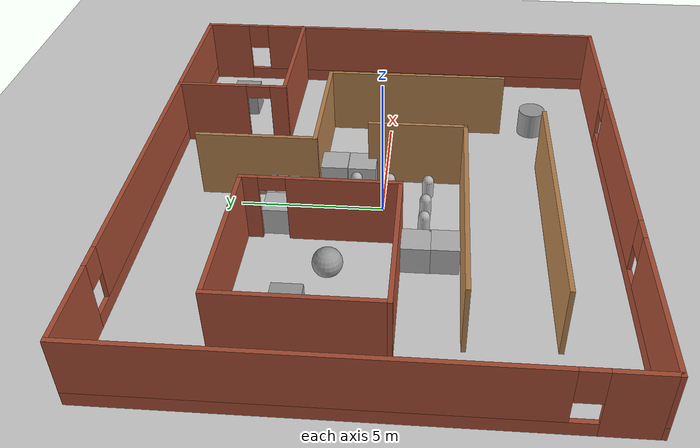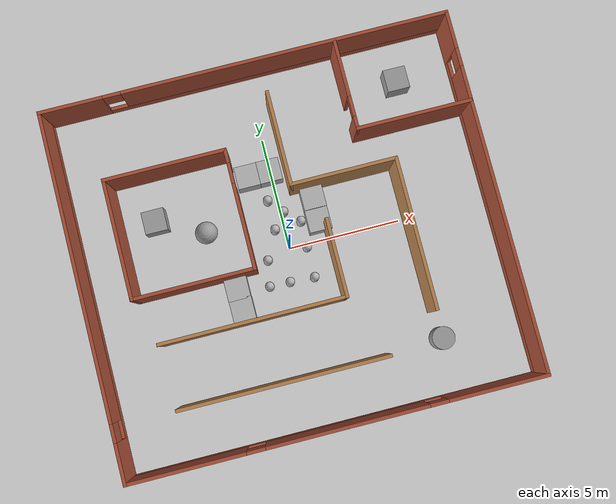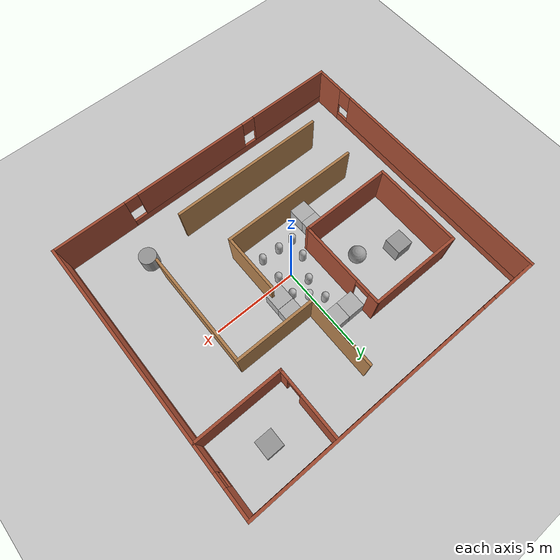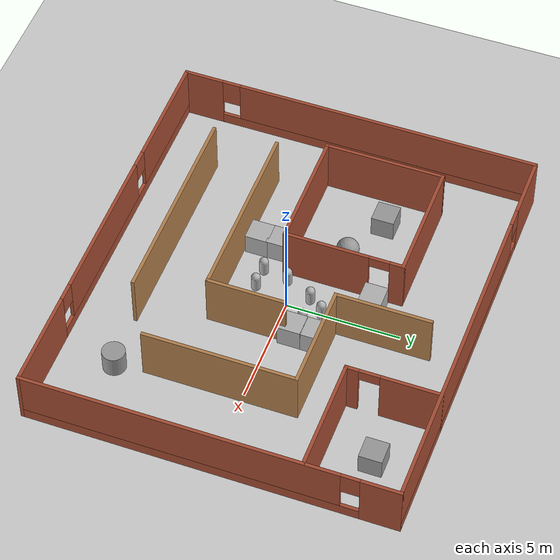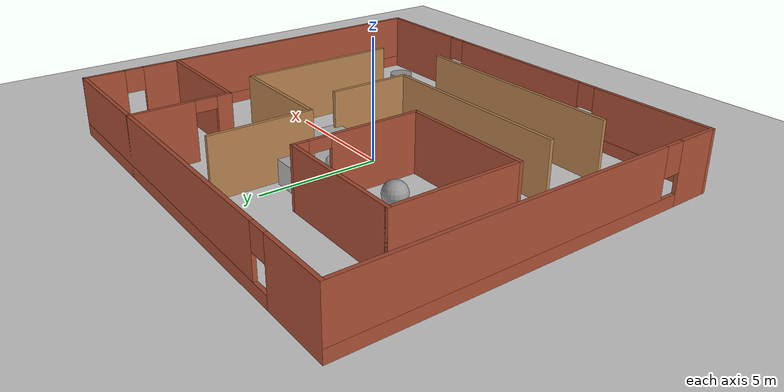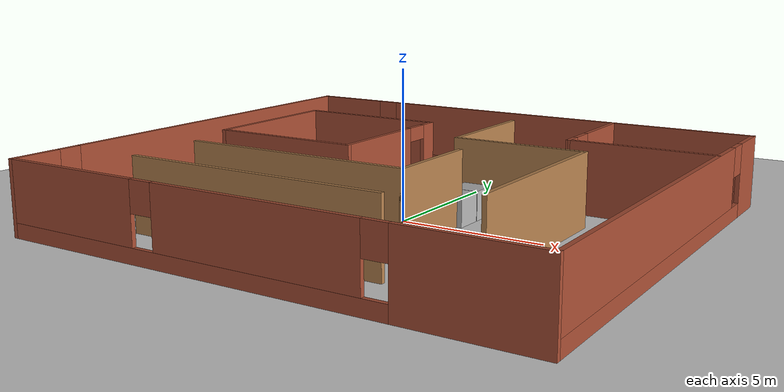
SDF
<sdf version="1.10">
 <world name="default">
  <physics name="1ms" type="ode">
   <max_step_size>0.005</max_step_size>
   <real_time_factor>250.0</real_time_factor>
  </physics>
  <plugin filename="libignition-gazebo-physics-system.so" name="ignition::gazebo::systems::Physics"/>
  <plugin filename="libignition-gazebo-user-commands-system.so" name="ignition::gazebo::systems::UserCommands"/>
  <plugin filename="libignition-gazebo-scene-broadcaster-system.so" name="ignition::gazebo::systems::SceneBroadcaster"/>
  <plugin filename="libignition-gazebo-sensors-system.so" name="ignition::gazebo::systems::Sensors">
   <render_engine>ogre2</render_engine>
  </plugin>
  <plugin filename="libignition-gazebo-contact-system.so" name="ignition::gazebo::systems::Contact"/>
  <gravity>0 0 -9.8000000000000007</gravity>
  <magnetic_field>6.0000000000000002e-06 2.3e-05 -4.1999999999999998e-05</magnetic_field>
  <atmosphere type="adiabatic"/>
  <physics type="ode">
   <max_step_size>0.001</max_step_size>
   <real_time_factor>1</real_time_factor>
   <real_time_update_rate>1000</real_time_update_rate>
  </physics>
  <scene>
   <ambient>0.400000006 0.400000006 0.400000006 1</ambient>
   <background>0.699999988 0.699999988 0.699999988 1</background>
   <shadows>true</shadows>
  </scene>
  <audio><device>default</device></audio>
  <spherical_coordinates>
   <surface_model>EARTH_WGS84</surface_model>
   <latitude_deg>0</latitude_deg>
   <longitude_deg>0</longitude_deg>
   <elevation>0</elevation>
   <heading_deg>0</heading_deg>
  </spherical_coordinates>
  <model name="ground_plane">
   <static>true</static>
   <link name="link">
    <collision name="collision">
     <geometry><plane><normal>0 0 1</normal><size>100 100</size></plane></geometry>
     <surface><friction><ode><mu>100</mu><mu2>50</mu2></ode></friction></surface>
    </collision>
    <visual name="visual">
     <cast_shadows>false</cast_shadows>
     <geometry><plane><normal>0 0 1</normal><size>100 100</size></plane></geometry>
     <material>
      <script><uri>file://media/materials/scripts/gazebo.material</uri><name>Gazebo/Grey</name></script>
     </material>
    </visual>
    <inertial>
     <mass>1</mass>
     <inertia><ixx>1</ixx><ixy>0</ixy><ixz>0</ixz><iyy>1</iyy><iyz>0</iyz><izz>1</izz></inertia>
    </inertial>
   </link>
  </model>
  <model name="maze">
   <link name="Wall_10">
    <pose>-1.7 1.8999999999999999 0 0 0 -1.5708</pose>
    <visual name="Wall_10_Visual_0">
     <pose>-2.3468900000000001 0 1.25 0 0 0</pose>
     <geometry><box><size>0.65622100000000005 0.14999999999999999 2.5</size></box></geometry>
     <material>
      <script><uri>file://media/materials/scripts/gazebo.material</uri><name>Gazebo/Bricks</name></script>
      <ambient>1 1 1 1</ambient>
     </material>
     <meta><layer>0</layer></meta>
    </visual>
    <collision name="Wall_10_Collision_0">
     <geometry><box><size>0.65622100000000005 0.14999999999999999 2.5</size></box></geometry>
     <pose>-2.3468900000000001 0 1.25 0 0 0</pose>
    </collision>
    <visual name="Wall_10_Visual_1">
     <pose>0.77810999999999997 0 1.25 0 0 0</pose>
     <geometry><box><size>3.7937799999999999 0.14999999999999999 2.5</size></box></geometry>
     <material>
      <script><uri>file://media/materials/scripts/gazebo.material</uri><name>Gazebo/Bricks</name></script>
      <ambient>1 1 1 1</ambient>
     </material>
     <meta><layer>0</layer></meta>
    </visual>
    <collision name="Wall_10_Collision_1">
     <geometry><box><size>3.7937799999999999 0.14999999999999999 2.5</size></box></geometry>
     <pose>0.77810999999999997 0 1.25 0 0 0</pose>
    </collision>
    <visual name="Wall_10_Visual_2">
     <pose>-1.5687800000000001 0 2.25 0 0 0</pose>
     <geometry><box><size>0.90000000000000002 0.14999999999999999 0.5</size></box></geometry>
     <material>
      <script><uri>file://media/materials/scripts/gazebo.material</uri><name>Gazebo/Bricks</name></script>
      <ambient>1 1 1 1</ambient>
     </material>
     <meta><layer>0</layer></meta>
    </visual>
    <collision name="Wall_10_Collision_2">
     <geometry><box><size>0.90000000000000002 0.14999999999999999 0.5</size></box></geometry>
     <pose>-1.5687800000000001 0 2.25 0 0 0</pose>
    </collision>
    <inertial>
     <mass>1</mass>
     <inertia><ixx>1</ixx><ixy>0</ixy><ixz>0</ixz><iyy>1</iyy><iyz>0</iyz><izz>1</izz></inertia>
    </inertial>
   </link>
   <link name="Wall_11">
    <collision name="Wall_11_Collision">
     <geometry><box><size>5.4500000000000002 0.14999999999999999 2.5</size></box></geometry>
     <pose>0 0 1.25 0 0 0</pose>
    </collision>
    <visual name="Wall_11_Visual">
     <pose>0 0 1.25 0 0 0</pose>
     <geometry><box><size>5.4500000000000002 0.14999999999999999 2.5</size></box></geometry>
     <material>
      <script><uri>file://media/materials/scripts/gazebo.material</uri><name>Gazebo/Bricks</name></script>
      <ambient>1 1 1 1</ambient>
     </material>
     <meta><layer>0</layer></meta>
    </visual>
    <pose>-4.349999999999997 -0.70000000000000073 0 0 0 3.1415900000000008</pose>
    <inertial>
     <mass>1</mass>
     <inertia><ixx>1</ixx><ixy>0</ixy><ixz>0</ixz><iyy>1</iyy><iyz>0</iyz><izz>1</izz></inertia>
    </inertial>
   </link>
   <link name="Wall_12">
    <collision name="Wall_12_Collision">
     <geometry><box><size>5.3499999999999996 0.14999999999999999 2.5</size></box></geometry>
     <pose>0 0 1.25 0 0 0</pose>
    </collision>
    <visual name="Wall_12_Visual">
     <pose>0 0 1.25 0 0 0</pose>
     <geometry><box><size>5.3499999999999996 0.14999999999999999 2.5</size></box></geometry>
     <material>
      <script><uri>file://media/materials/scripts/gazebo.material</uri><name>Gazebo/Bricks</name></script>
      <ambient>1 1 1 1</ambient>
     </material>
     <meta><layer>0</layer></meta>
    </visual>
    <pose>-6.9999999999999991 1.8999999999999968 0 0 0 1.5708000000000011</pose>
    <inertial>
     <mass>1</mass>
     <inertia><ixx>1</ixx><ixy>0</ixy><ixz>0</ixz><iyy>1</iyy><iyz>0</iyz><izz>1</izz></inertia>
    </inertial>
   </link>
   <link name="Wall_14">
    <collision name="Wall_14_Collision">
     <geometry><box><size>8.25 0.14999999999999999 2.5</size></box></geometry>
     <pose>0 0 1.25 0 0 0</pose>
    </collision>
    <visual name="Wall_14_Visual">
     <pose>0 0 1.25 0 0 0</pose>
     <geometry><box><size>8.25 0.14999999999999999 2.5</size></box></geometry>
     <material>
      <script><uri>file://media/materials/scripts/gazebo.material</uri><name>Gazebo/Wood</name></script>
      <ambient>1 1 1 1</ambient>
     </material>
     <meta><layer>0</layer></meta>
    </visual>
    <pose>-2.2997599999999965 -2.7918099999999986 0 0 0 7.7715611723760958e-16</pose>
    <inertial>
     <mass>1</mass>
     <inertia><ixx>1</ixx><ixy>0</ixy><ixz>0</ixz><iyy>1</iyy><iyz>0</iyz><izz>1</izz></inertia>
    </inertial>
   </link>
   <link name="Wall_15">
    <collision name="Wall_15_Collision">
     <geometry><box><size>3.5 0.14999999999999999 2.5</size></box></geometry>
     <pose>0 0 1.25 0 0 0</pose>
    </collision>
    <visual name="Wall_15_Visual">
     <pose>0 0 1.25 0 0 0</pose>
     <geometry><box><size>3.5 0.14999999999999999 2.5</size></box></geometry>
     <material>
      <script><uri>file://media/materials/scripts/gazebo.material</uri><name>Gazebo/Wood</name></script>
      <ambient>1 1 1 1</ambient>
     </material>
     <meta><layer>0</layer></meta>
    </visual>
    <pose>1.7502400000000022 -1.1168099999999961 0 0 0 1.5708000000000011</pose>
    <inertial>
     <mass>1</mass>
     <inertia><ixx>1</ixx><ixy>0</ixy><ixz>0</ixz><iyy>1</iyy><iyz>0</iyz><izz>1</izz></inertia>
    </inertial>
   </link>
   <link name="Wall_21">
    <pose>3.9999999999999964 6.0000000000000053 0 0 0 -1.5707999999999998</pose>
    <visual name="Wall_21_Visual_0">
     <pose>-0.76249999999999996 0 1.25 0 0 0</pose>
     <geometry><box><size>2.625 0.14999999999999999 2.5</size></box></geometry>
     <material>
      <script><uri>file://media/materials/scripts/gazebo.material</uri><name>Gazebo/Bricks</name></script>
      <ambient>1 1 1 1</ambient>
     </material>
     <meta><layer>0</layer></meta>
    </visual>
    <collision name="Wall_21_Collision_0">
     <geometry><box><size>2.625 0.14999999999999999 2.5</size></box></geometry>
     <pose>-0.76249999999999996 0 1.25 0 0 0</pose>
    </collision>
    <visual name="Wall_21_Visual_1">
     <pose>1.7625 0 1.25 0 0 0</pose>
     <geometry><box><size>0.625 0.14999999999999999 2.5</size></box></geometry>
     <material>
      <script><uri>file://media/materials/scripts/gazebo.material</uri><name>Gazebo/Bricks</name></script>
      <ambient>1 1 1 1</ambient>
     </material>
     <meta><layer>0</layer></meta>
    </visual>
    <collision name="Wall_21_Collision_1">
     <geometry><box><size>0.625 0.14999999999999999 2.5</size></box></geometry>
     <pose>1.7625 0 1.25 0 0 0</pose>
    </collision>
    <visual name="Wall_21_Visual_2">
     <pose>1 0 2.25 0 0 0</pose>
     <geometry><box><size>0.90000000000000002 0.14999999999999999 0.5</size></box></geometry>
     <material>
      <script><uri>file://media/materials/scripts/gazebo.material</uri><name>Gazebo/Bricks</name></script>
      <ambient>1 1 1 1</ambient>
     </material>
     <meta><layer>0</layer></meta>
    </visual>
    <collision name="Wall_21_Collision_2">
     <geometry><box><size>0.90000000000000002 0.14999999999999999 0.5</size></box></geometry>
     <pose>1 0 2.25 0 0 0</pose>
    </collision>
    <inertial>
     <mass>1</mass>
     <inertia><ixx>1</ixx><ixy>0</ixy><ixz>0</ixz><iyy>1</iyy><iyz>0</iyz><izz>1</izz></inertia>
    </inertial>
   </link>
   <link name="Wall_22">
    <collision name="Wall_22_Collision">
     <geometry><box><size>5.1500000000000004 0.14999999999999999 2.5</size></box></geometry>
     <pose>0 0 1.25 0 0 0</pose>
    </collision>
    <visual name="Wall_22_Visual">
     <pose>0 0 1.25 0 0 0</pose>
     <geometry><box><size>5.1500000000000004 0.14999999999999999 2.5</size></box></geometry>
     <material>
      <script><uri>file://media/materials/scripts/gazebo.material</uri><name>Gazebo/Bricks</name></script>
      <ambient>1 1 1 1</ambient>
     </material>
     <meta><layer>0</layer></meta>
    </visual>
    <pose>6.4999999999999973 4.0000000000000071 0 0 0 7.7715611723760958e-16</pose>
    <inertial>
     <mass>1</mass>
     <inertia><ixx>1</ixx><ixy>0</ixy><ixz>0</ixz><iyy>1</iyy><iyz>0</iyz><izz>1</izz></inertia>
    </inertial>
   </link>
   <link name="Wall_27">
    <collision name="Wall_27_Collision">
     <geometry><box><size>4.25 0.14999999999999999 2.5</size></box></geometry>
     <pose>0 0 1.25 0 0 0</pose>
    </collision>
    <visual name="Wall_27_Visual">
     <pose>0 0 1.25 0 0 0</pose>
     <geometry><box><size>4.25 0.14999999999999999 2.5</size></box></geometry>
     <material>
      <script><uri>file://media/materials/scripts/gazebo.material</uri><name>Gazebo/Wood</name></script>
      <ambient>1 1 1 1</ambient>
     </material>
     <meta><layer>0</layer></meta>
    </visual>
    <pose>0.64905699999999811 4.4225200000000005 0 0 0 -1.5707999999999998</pose>
    <inertial>
     <mass>1</mass>
     <inertia><ixx>1</ixx><ixy>0</ixy><ixz>0</ixz><iyy>1</iyy><iyz>0</iyz><izz>1</izz></inertia>
    </inertial>
   </link>
   <link name="Wall_28">
    <collision name="Wall_28_Collision">
     <geometry><box><size>4.75 0.14999999999999999 2.5</size></box></geometry>
     <pose>0 0 1.25 0 0 0</pose>
    </collision>
    <visual name="Wall_28_Visual">
     <pose>0 0 1.25 0 0 0</pose>
     <geometry><box><size>4.75 0.14999999999999999 2.5</size></box></geometry>
     <material>
      <script><uri>file://media/materials/scripts/gazebo.material</uri><name>Gazebo/Wood</name></script>
      <ambient>1 1 1 1</ambient>
     </material>
     <meta><layer>0</layer></meta>
    </visual>
    <pose>2.9490599999999989 2.3725200000000051 0 0 0 7.7715611723760958e-16</pose>
    <inertial>
     <mass>1</mass>
     <inertia><ixx>1</ixx><ixy>0</ixy><ixz>0</ixz><iyy>1</iyy><iyz>0</iyz><izz>1</izz></inertia>
    </inertial>
   </link>
   <link name="Wall_29">
    <collision name="Wall_29_Collision">
     <geometry><box><size>6.75 0.14999999999999999 2.5</size></box></geometry>
     <pose>0 0 1.25 0 0 0</pose>
    </collision>
    <visual name="Wall_29_Visual">
     <pose>0 0 1.25 0 0 0</pose>
     <geometry><box><size>6.75 0.14999999999999999 2.5</size></box></geometry>
     <material>
      <script><uri>file://media/materials/scripts/gazebo.material</uri><name>Gazebo/Wood</name></script>
      <ambient>1 1 1 1</ambient>
     </material>
     <meta><layer>0</layer></meta>
    </visual>
    <pose>5.2490600000000009 -0.92748199999999348 0 0 0 -1.5707999999999998</pose>
    <inertial>
     <mass>1</mass>
     <inertia><ixx>1</ixx><ixy>0</ixy><ixz>0</ixz><iyy>1</iyy><iyz>0</iyz><izz>1</izz></inertia>
    </inertial>
   </link>
   <link name="Wall_31">
    <collision name="Wall_31_Collision">
     <geometry><box><size>9.25 0.14999999999999999 2.5</size></box></geometry>
     <pose>0 0 1.25 0 0 0</pose>
    </collision>
    <visual name="Wall_31_Visual">
     <pose>0 0 1.25 0 0 0</pose>
     <geometry><box><size>9.25 0.14999999999999999 2.5</size></box></geometry>
     <material>
      <script><uri>file://media/materials/scripts/gazebo.material</uri><name>Gazebo/Wood</name></script>
      <ambient>1 1 1 1</ambient>
     </material>
     <meta><layer>0</layer></meta>
    </visual>
    <pose>-1.6783899999999938 -5.6236999999999995 0 0 0 7.7715611723760958e-16</pose>
    <inertial>
     <mass>1</mass>
     <inertia><ixx>1</ixx><ixy>0</ixy><ixz>0</ixz><iyy>1</iyy><iyz>0</iyz><izz>1</izz></inertia>
    </inertial>
   </link>
   <link name="Wall_4">
    <pose>-4.662936703425659e-15 8.0000000000000018 0 0 0 7.7715611723760958e-16</pose>
    <visual name="Wall_4_Visual_0">
     <pose>-7.6494200000000001 0 1.25 0 0 0</pose>
     <geometry><box><size>2.8511600000000001 0.14999999999999999 2.5</size></box></geometry>
     <material>
      <script><uri>file://media/materials/scripts/gazebo.material</uri><name>Gazebo/Bricks</name></script>
      <ambient>1 1 1 1</ambient>
     </material>
     <meta><layer>0</layer></meta>
    </visual>
    <collision name="Wall_4_Collision_0">
     <geometry><box><size>2.8511600000000001 0.14999999999999999 2.5</size></box></geometry>
     <pose>-7.6494200000000001 0 1.25 0 0 0</pose>
    </collision>
    <visual name="Wall_4_Visual_1">
     <pose>1.4255800000000001 0 0.25 0 0 0</pose>
     <geometry><box><size>15.2988 0.14999999999999999 0.5</size></box></geometry>
     <material>
      <script><uri>file://media/materials/scripts/gazebo.material</uri><name>Gazebo/Bricks</name></script>
      <ambient>1 1 1 1</ambient>
     </material>
     <meta><layer>0</layer></meta>
    </visual>
    <collision name="Wall_4_Collision_1">
     <geometry><box><size>15.2988 0.14999999999999999 0.5</size></box></geometry>
     <pose>1.4255800000000001 0 0.25 0 0 0</pose>
    </collision>
    <visual name="Wall_4_Visual_2">
     <pose>1.82558 0 1.5 0 0 0</pose>
     <geometry><box><size>14.498799999999999 0.14999999999999999 2</size></box></geometry>
     <material>
      <script><uri>file://media/materials/scripts/gazebo.material</uri><name>Gazebo/Bricks</name></script>
      <ambient>1 1 1 1</ambient>
     </material>
     <meta><layer>0</layer></meta>
    </visual>
    <collision name="Wall_4_Collision_2">
     <geometry><box><size>14.498799999999999 0.14999999999999999 2</size></box></geometry>
     <pose>1.82558 0 1.5 0 0 0</pose>
    </collision>
    <visual name="Wall_4_Visual_3">
     <pose>-5.8238300000000001 0 2 0 0 0</pose>
     <geometry><box><size>0.80000000000000004 0.14999999999999999 1</size></box></geometry>
     <material>
      <script><uri>file://media/materials/scripts/gazebo.material</uri><name>Gazebo/Bricks</name></script>
      <ambient>1 1 1 1</ambient>
     </material>
     <meta><layer>0</layer></meta>
    </visual>
    <collision name="Wall_4_Collision_3">
     <geometry><box><size>0.80000000000000004 0.14999999999999999 1</size></box></geometry>
     <pose>-5.8238300000000001 0 2 0 0 0</pose>
    </collision>
    <inertial>
     <mass>1</mass>
     <inertia><ixx>1</ixx><ixy>0</ixy><ixz>0</ixz><iyy>1</iyy><iyz>0</iyz><izz>1</izz></inertia>
    </inertial>
   </link>
   <link name="Wall_5">
    <pose>9 9.4368957093138306e-15 0 0 0 -1.5707999999999998</pose>
    <visual name="Wall_5_Visual_0">
     <pose>-7.2107999999999999 0 1.25 0 0 0</pose>
     <geometry><box><size>1.7283999999999999 0.14999999999999999 2.5</size></box></geometry>
     <material>
      <script><uri>file://media/materials/scripts/gazebo.material</uri><name>Gazebo/Bricks</name></script>
      <ambient>1 1 1 1</ambient>
     </material>
     <meta><layer>0</layer></meta>
    </visual>
    <collision name="Wall_5_Collision_0">
     <geometry><box><size>1.7283999999999999 0.14999999999999999 2.5</size></box></geometry>
     <pose>-7.2107999999999999 0 1.25 0 0 0</pose>
    </collision>
    <visual name="Wall_5_Visual_1">
     <pose>0.86420200000000003 0 0.25 0 0 0</pose>
     <geometry><box><size>14.4216 0.14999999999999999 0.5</size></box></geometry>
     <material>
      <script><uri>file://media/materials/scripts/gazebo.material</uri><name>Gazebo/Bricks</name></script>
      <ambient>1 1 1 1</ambient>
     </material>
     <meta><layer>0</layer></meta>
    </visual>
    <collision name="Wall_5_Collision_1">
     <geometry><box><size>14.4216 0.14999999999999999 0.5</size></box></geometry>
     <pose>0.86420200000000003 0 0.25 0 0 0</pose>
    </collision>
    <visual name="Wall_5_Visual_2">
     <pose>1.2642 0 1.5 0 0 0</pose>
     <geometry><box><size>13.621600000000001 0.14999999999999999 2</size></box></geometry>
     <material>
      <script><uri>file://media/materials/scripts/gazebo.material</uri><name>Gazebo/Bricks</name></script>
      <ambient>1 1 1 1</ambient>
     </material>
     <meta><layer>0</layer></meta>
    </visual>
    <collision name="Wall_5_Collision_2">
     <geometry><box><size>13.621600000000001 0.14999999999999999 2</size></box></geometry>
     <pose>1.2642 0 1.5 0 0 0</pose>
    </collision>
    <visual name="Wall_5_Visual_3">
     <pose>-5.9466000000000001 0 2 0 0 0</pose>
     <geometry><box><size>0.80000000000000004 0.14999999999999999 1</size></box></geometry>
     <material>
      <script><uri>file://media/materials/scripts/gazebo.material</uri><name>Gazebo/Bricks</name></script>
      <ambient>1 1 1 1</ambient>
     </material>
     <meta><layer>0</layer></meta>
    </visual>
    <collision name="Wall_5_Collision_3">
     <geometry><box><size>0.80000000000000004 0.14999999999999999 1</size></box></geometry>
     <pose>-5.9466000000000001 0 2 0 0 0</pose>
    </collision>
    <inertial>
     <mass>1</mass>
     <inertia><ixx>1</ixx><ixy>0</ixy><ixz>0</ixz><iyy>1</iyy><iyz>0</iyz><izz>1</izz></inertia>
    </inertial>
   </link>
   <link name="Wall_6">
    <pose>7.7715611723760926e-15 -7.9999999999999964 0 0 0 3.1415900000000008</pose>
    <visual name="Wall_6_Visual_0">
     <pose>-6.9027599999999998 0 1.25 0 0 0</pose>
     <geometry><box><size>4.3444900000000004 0.14999999999999999 2.5</size></box></geometry>
     <material>
      <script><uri>file://media/materials/scripts/gazebo.material</uri><name>Gazebo/Bricks</name></script>
      <ambient>1 1 1 1</ambient>
     </material>
     <meta><layer>0</layer></meta>
    </visual>
    <collision name="Wall_6_Collision_0">
     <geometry><box><size>4.3444900000000004 0.14999999999999999 2.5</size></box></geometry>
     <pose>-6.9027599999999998 0 1.25 0 0 0</pose>
    </collision>
    <visual name="Wall_6_Visual_1">
     <pose>2.1722399999999999 0 0.25 0 0 0</pose>
     <geometry><box><size>13.8055 0.14999999999999999 0.5</size></box></geometry>
     <material>
      <script><uri>file://media/materials/scripts/gazebo.material</uri><name>Gazebo/Bricks</name></script>
      <ambient>1 1 1 1</ambient>
     </material>
     <meta><layer>0</layer></meta>
    </visual>
    <collision name="Wall_6_Collision_1">
     <geometry><box><size>13.8055 0.14999999999999999 0.5</size></box></geometry>
     <pose>2.1722399999999999 0 0.25 0 0 0</pose>
    </collision>
    <visual name="Wall_6_Visual_2">
     <pose>-0.42655100000000001 0 1.5 0 0 0</pose>
     <geometry><box><size>7.00793 0.14999999999999999 2</size></box></geometry>
     <material>
      <script><uri>file://media/materials/scripts/gazebo.material</uri><name>Gazebo/Bricks</name></script>
      <ambient>1 1 1 1</ambient>
     </material>
     <meta><layer>0</layer></meta>
    </visual>
    <collision name="Wall_6_Collision_2">
     <geometry><box><size>7.00793 0.14999999999999999 2</size></box></geometry>
     <pose>-0.42655100000000001 0 1.5 0 0 0</pose>
    </collision>
    <visual name="Wall_6_Visual_3">
     <pose>6.47621 0 1.5 0 0 0</pose>
     <geometry><box><size>5.1975899999999999 0.14999999999999999 2</size></box></geometry>
     <material>
      <script><uri>file://media/materials/scripts/gazebo.material</uri><name>Gazebo/Bricks</name></script>
      <ambient>1 1 1 1</ambient>
     </material>
     <meta><layer>0</layer></meta>
    </visual>
    <collision name="Wall_6_Collision_3">
     <geometry><box><size>5.1975899999999999 0.14999999999999999 2</size></box></geometry>
     <pose>6.47621 0 1.5 0 0 0</pose>
    </collision>
    <visual name="Wall_6_Visual_4">
     <pose>-4.3305100000000003 0 2 0 0 0</pose>
     <geometry><box><size>0.80000000000000004 0.14999999999999999 1</size></box></geometry>
     <material>
      <script><uri>file://media/materials/scripts/gazebo.material</uri><name>Gazebo/Bricks</name></script>
      <ambient>1 1 1 1</ambient>
     </material>
     <meta><layer>0</layer></meta>
    </visual>
    <collision name="Wall_6_Collision_4">
     <geometry><box><size>0.80000000000000004 0.14999999999999999 1</size></box></geometry>
     <pose>-4.3305100000000003 0 2 0 0 0</pose>
    </collision>
    <visual name="Wall_6_Visual_5">
     <pose>3.4774099999999999 0 2 0 0 0</pose>
     <geometry><box><size>0.80000000000000004 0.14999999999999999 1</size></box></geometry>
     <material>
      <script><uri>file://media/materials/scripts/gazebo.material</uri><name>Gazebo/Bricks</name></script>
      <ambient>1 1 1 1</ambient>
     </material>
     <meta><layer>0</layer></meta>
    </visual>
    <collision name="Wall_6_Collision_5">
     <geometry><box><size>0.80000000000000004 0.14999999999999999 1</size></box></geometry>
     <pose>3.4774099999999999 0 2 0 0 0</pose>
    </collision>
    <inertial>
     <mass>1</mass>
     <inertia><ixx>1</ixx><ixy>0</ixy><ixz>0</ixz><iyy>1</iyy><iyz>0</iyz><izz>1</izz></inertia>
    </inertial>
   </link>
   <link name="Wall_7">
    <pose>-8.9999999999999964 -4.5519144009631387e-15 0 0 0 1.5708000000000011</pose>
    <visual name="Wall_7_Visual_0">
     <pose>-7.1707200000000002 0 1.25 0 0 0</pose>
     <geometry><box><size>1.80857 0.14999999999999999 2.5</size></box></geometry>
     <material>
      <script><uri>file://media/materials/scripts/gazebo.material</uri><name>Gazebo/Bricks</name></script>
      <ambient>1 1 1 1</ambient>
     </material>
     <meta><layer>0</layer></meta>
    </visual>
    <collision name="Wall_7_Collision_0">
     <geometry><box><size>1.80857 0.14999999999999999 2.5</size></box></geometry>
     <pose>-7.1707200000000002 0 1.25 0 0 0</pose>
    </collision>
    <visual name="Wall_7_Visual_1">
     <pose>0.90428299999999995 0 0.25 0 0 0</pose>
     <geometry><box><size>14.3414 0.14999999999999999 0.5</size></box></geometry>
     <material>
      <script><uri>file://media/materials/scripts/gazebo.material</uri><name>Gazebo/Bricks</name></script>
      <ambient>1 1 1 1</ambient>
     </material>
     <meta><layer>0</layer></meta>
    </visual>
    <collision name="Wall_7_Collision_1">
     <geometry><box><size>14.3414 0.14999999999999999 0.5</size></box></geometry>
     <pose>0.90428299999999995 0 0.25 0 0 0</pose>
    </collision>
    <visual name="Wall_7_Visual_2">
     <pose>1.3042800000000001 0 1.5 0 0 0</pose>
     <geometry><box><size>13.541399999999999 0.14999999999999999 2</size></box></geometry>
     <material>
      <script><uri>file://media/materials/scripts/gazebo.material</uri><name>Gazebo/Bricks</name></script>
      <ambient>1 1 1 1</ambient>
     </material>
     <meta><layer>0</layer></meta>
    </visual>
    <collision name="Wall_7_Collision_2">
     <geometry><box><size>13.541399999999999 0.14999999999999999 2</size></box></geometry>
     <pose>1.3042800000000001 0 1.5 0 0 0</pose>
    </collision>
    <visual name="Wall_7_Visual_3">
     <pose>-5.8664300000000003 0 1.8999999999999999 0 0 0</pose>
     <geometry><box><size>0.80000000000000004 0.14999999999999999 1.2</size></box></geometry>
     <material>
      <script><uri>file://media/materials/scripts/gazebo.material</uri><name>Gazebo/Bricks</name></script>
      <ambient>1 1 1 1</ambient>
     </material>
     <meta><layer>0</layer></meta>
    </visual>
    <collision name="Wall_7_Collision_3">
     <geometry><box><size>0.80000000000000004 0.14999999999999999 1.2</size></box></geometry>
     <pose>-5.8664300000000003 0 1.8999999999999999 0 0 0</pose>
    </collision>
    <inertial>
     <mass>1</mass>
     <inertia><ixx>1</ixx><ixy>0</ixy><ixz>0</ixz><iyy>1</iyy><iyz>0</iyz><izz>1</izz></inertia>
    </inertial>
   </link>
   <link name="Wall_9">
    <collision name="Wall_9_Collision">
     <geometry><box><size>5.4500000000000002 0.14999999999999999 2.5</size></box></geometry>
     <pose>0 0 1.25 0 0 0</pose>
    </collision>
    <visual name="Wall_9_Visual">
     <pose>0 0 1.25 0 0 0</pose>
     <geometry><box><size>5.4500000000000002 0.14999999999999999 2.5</size></box></geometry>
     <material>
      <script><uri>file://media/materials/scripts/gazebo.material</uri><name>Gazebo/Bricks</name></script>
      <ambient>1 1 1 1</ambient>
     </material>
     <meta><layer>0</layer></meta>
    </visual>
    <pose>-4.3500000000000005 4.4999999999999982 0 0 0 7.7715611723760958e-16</pose>
    <inertial>
     <mass>1</mass>
     <inertia><ixx>1</ixx><ixy>0</ixy><ixz>0</ixz><iyy>1</iyy><iyz>0</iyz><izz>1</izz></inertia>
    </inertial>
   </link>
   <static>true</static>
  </model>
  <model name="maze_0">
   <link name="link_0">
    <inertial>
     <mass>1</mass>
     <inertia>
      <ixx>0.16666700000000001</ixx>
      <ixy>0</ixy>
      <ixz>0</ixz>
      <iyy>0.16666700000000001</iyy>
      <iyz>0</iyz>
      <izz>0.16666700000000001</izz>
     </inertia>
    </inertial>
    <pose>5.6783299999999999 4.9084899999999996 0 0 0 0</pose>
    <visual name="visual">
     <geometry><box><size>1 1 1</size></box></geometry>
     <material>
      <lighting>true</lighting>
      <script><uri>file://media/materials/scripts/gazebo.material</uri><name>Gazebo/Grey</name></script>
      <shader type="pixel"/>
     </material>
    </visual>
    <collision name="collision">
     <geometry><box><size>1 1 1</size></box></geometry>
     <surface>
      <friction>
       <ode><mu>1</mu><mu2>1</mu2><fdir1>0 0 0</fdir1><slip1>0</slip1><slip2>0</slip2></ode>
       <torsional>
        <coefficient>1</coefficient>
        <patch_radius>0</patch_radius>
        <surface_radius>0</surface_radius>
        <use_patch_radius>true</use_patch_radius>
        <ode><slip>0</slip></ode>
       </torsional>
      </friction>
      <bounce><restitution_coefficient>0</restitution_coefficient><threshold>1000000</threshold></bounce>
      <contact>
       <collide_without_contact>false</collide_without_contact>
       <collide_without_contact_bitmask>1</collide_without_contact_bitmask>
       <collide_bitmask>1</collide_bitmask>
       <ode>
        <soft_cfm>0</soft_cfm>
        <soft_erp>0.20000000000000001</soft_erp>
        <kp>10000000000000</kp>
        <kd>1</kd>
        <max_vel>0.01</max_vel>
        <min_depth>0</min_depth>
       </ode>
       <bullet>
        <split_impulse>true</split_impulse>
        <split_impulse_penetration_threshold>-0.01</split_impulse_penetration_threshold>
        <soft_cfm>0</soft_cfm>
        <soft_erp>0.20000000000000001</soft_erp>
        <kp>10000000000000</kp>
        <kd>1</kd>
       </bullet>
      </contact>
     </surface>
    </collision>
   </link>
   <link name="link_1">
    <inertial>
     <mass>1</mass>
     <inertia>
      <ixx>0.16666700000000001</ixx>
      <ixy>0</ixy>
      <ixz>0</ixz>
      <iyy>0.16666700000000001</iyy>
      <iyz>0</iyz>
      <izz>0.16666700000000001</izz>
     </inertia>
    </inertial>
    <pose>-6.2150299999999996 1.3735299999999997 0 0 0 0</pose>
    <visual name="visual">
     <geometry><box><size>1 1 1</size></box></geometry>
     <material>
      <lighting>true</lighting>
      <script><uri>file://media/materials/scripts/gazebo.material</uri><name>Gazebo/Grey</name></script>
      <shader type="pixel"/>
     </material>
    </visual>
    <collision name="collision">
     <geometry><box><size>1 1 1</size></box></geometry>
     <surface>
      <friction>
       <ode><mu>1</mu><mu2>1</mu2><fdir1>0 0 0</fdir1><slip1>0</slip1><slip2>0</slip2></ode>
       <torsional>
        <coefficient>1</coefficient>
        <patch_radius>0</patch_radius>
        <surface_radius>0</surface_radius>
        <use_patch_radius>true</use_patch_radius>
        <ode><slip>0</slip></ode>
       </torsional>
      </friction>
      <bounce><restitution_coefficient>0</restitution_coefficient><threshold>1000000</threshold></bounce>
      <contact>
       <collide_without_contact>false</collide_without_contact>
       <collide_without_contact_bitmask>1</collide_without_contact_bitmask>
       <collide_bitmask>1</collide_bitmask>
       <ode>
        <soft_cfm>0</soft_cfm>
        <soft_erp>0.20000000000000001</soft_erp>
        <kp>10000000000000</kp>
        <kd>1</kd>
        <max_vel>0.01</max_vel>
        <min_depth>0</min_depth>
       </ode>
       <bullet>
        <split_impulse>true</split_impulse>
        <split_impulse_penetration_threshold>-0.01</split_impulse_penetration_threshold>
        <soft_cfm>0</soft_cfm>
        <soft_erp>0.20000000000000001</soft_erp>
        <kp>10000000000000</kp>
        <kd>1</kd>
       </bullet>
      </contact>
     </surface>
    </collision>
   </link>
   <link name="link_2">
    <inertial>
     <mass>1</mass>
     <inertia>
      <ixx>0.10000000000000001</ixx>
      <ixy>0</ixy>
      <ixz>0</ixz>
      <iyy>0.10000000000000001</iyy>
      <iyz>0</iyz>
      <izz>0.10000000000000001</izz>
     </inertia>
    </inertial>
    <pose>-4.1561300000000001 0.37373999999999996 0 0 0 0</pose>
    <visual name="visual">
     <geometry><sphere><radius>0.5</radius></sphere></geometry>
     <material>
      <lighting>true</lighting>
      <script><uri>file://media/materials/scripts/gazebo.material</uri><name>Gazebo/Grey</name></script>
      <shader type="pixel"/>
     </material>
    </visual>
    <collision name="collision">
     <geometry><sphere><radius>0.5</radius></sphere></geometry>
     <surface>
      <friction>
       <ode><mu>1</mu><mu2>1</mu2><fdir1>0 0 0</fdir1><slip1>0</slip1><slip2>0</slip2></ode>
       <torsional>
        <coefficient>1</coefficient>
        <patch_radius>0</patch_radius>
        <surface_radius>0</surface_radius>
        <use_patch_radius>true</use_patch_radius>
        <ode><slip>0</slip></ode>
       </torsional>
      </friction>
      <bounce><restitution_coefficient>0</restitution_coefficient><threshold>1000000</threshold></bounce>
      <contact>
       <collide_without_contact>false</collide_without_contact>
       <collide_without_contact_bitmask>1</collide_without_contact_bitmask>
       <collide_bitmask>1</collide_bitmask>
       <ode>
        <soft_cfm>0</soft_cfm>
        <soft_erp>0.20000000000000001</soft_erp>
        <kp>10000000000000</kp>
        <kd>1</kd>
        <max_vel>0.01</max_vel>
        <min_depth>0</min_depth>
       </ode>
       <bullet>
        <split_impulse>true</split_impulse>
        <split_impulse_penetration_threshold>-0.01</split_impulse_penetration_threshold>
        <soft_cfm>0</soft_cfm>
        <soft_erp>0.20000000000000001</soft_erp>
        <kp>10000000000000</kp>
        <kd>1</kd>
       </bullet>
      </contact>
     </surface>
    </collision>
   </link>
   <link name="link_3">
    <inertial>
     <mass>1</mass>
     <inertia>
      <ixx>0.14583299999999999</ixx>
      <ixy>0</ixy>
      <ixz>0</ixz>
      <iyy>0.14583299999999999</iyy>
      <iyz>0</iyz>
      <izz>0.125</izz>
     </inertia>
    </inertial>
    <pose>4.6928200000000002 -6.6557700000000004 0 0 0 0</pose>
    <visual name="visual">
     <geometry><cylinder><radius>0.5</radius><length>1</length></cylinder></geometry>
     <material>
      <lighting>true</lighting>
      <script><uri>file://media/materials/scripts/gazebo.material</uri><name>Gazebo/Grey</name></script>
      <shader type="pixel"/>
     </material>
    </visual>
    <collision name="collision">
     <geometry><cylinder><radius>0.5</radius><length>1</length></cylinder></geometry>
     <surface>
      <friction>
       <ode><mu>1</mu><mu2>1</mu2><fdir1>0 0 0</fdir1><slip1>0</slip1><slip2>0</slip2></ode>
       <torsional>
        <coefficient>1</coefficient>
        <patch_radius>0</patch_radius>
        <surface_radius>0</surface_radius>
        <use_patch_radius>true</use_patch_radius>
        <ode><slip>0</slip></ode>
       </torsional>
      </friction>
      <bounce><restitution_coefficient>0</restitution_coefficient><threshold>1000000</threshold></bounce>
      <contact>
       <collide_without_contact>false</collide_without_contact>
       <collide_without_contact_bitmask>1</collide_without_contact_bitmask>
       <collide_bitmask>1</collide_bitmask>
       <ode>
        <soft_cfm>0</soft_cfm>
        <soft_erp>0.20000000000000001</soft_erp>
        <kp>10000000000000</kp>
        <kd>1</kd>
        <max_vel>0.01</max_vel>
        <min_depth>0</min_depth>
       </ode>
       <bullet>
        <split_impulse>true</split_impulse>
        <split_impulse_penetration_threshold>-0.01</split_impulse_penetration_threshold>
        <soft_cfm>0</soft_cfm>
        <soft_erp>0.20000000000000001</soft_erp>
        <kp>10000000000000</kp>
        <kd>1</kd>
       </bullet>
      </contact>
     </surface>
    </collision>
   </link>
   <static>false</static>
   <pose>0.74066699999999996 1.14741 0.5 0 0 0</pose>
  </model>
  <model name="box">
   <pose>1.5033242346989062 1.8305424433192319 0.5 0 0 0</pose>
   <link name="box_link">
    <inertial>
     <inertia><ixx>0.16666</ixx><ixy>0</ixy><ixz>0</ixz><iyy>0.16666</iyy><iyz>0</iyz><izz>0.16666</izz></inertia>
     <mass>1</mass>
    </inertial>
    <collision name="box_collision"><geometry><box><size>1 1 1</size></box></geometry></collision>
    <visual name="box_visual">
     <geometry><box><size>1 1 1</size></box></geometry>
     <material>
      <ambient>0.300000012 0.300000012 0.300000012 1</ambient>
      <diffuse>0.699999988 0.699999988 0.699999988 1</diffuse>
      <specular>1 1 1 1</specular>
     </material>
    </visual>
   </link>
   <static>false</static>
  </model>
  <model name="box_0">
   <pose>-0.063324336422673877 3.4510493372498061 0.5 0 0 0</pose>
   <link name="box_link">
    <inertial>
     <inertia><ixx>0.16666</ixx><ixy>0</ixy><ixz>0</ixz><iyy>0.16666</iyy><iyz>0</iyz><izz>0.16666</izz></inertia>
     <mass>1</mass>
    </inertial>
    <collision name="box_collision"><geometry><box><size>1 1 1</size></box></geometry></collision>
    <visual name="box_visual">
     <geometry><box><size>1 1 1</size></box></geometry>
     <material>
      <ambient>0.300000012 0.300000012 0.300000012 1</ambient>
      <diffuse>0.699999988 0.699999988 0.699999988 1</diffuse>
      <specular>1 1 1 1</specular>
     </material>
    </visual>
   </link>
   <static>false</static>
  </model>
  <model name="box_1">
   <pose>-1.0635475442382234 3.448202211366548 0.5 0 0 0</pose>
   <link name="box_link">
    <inertial>
     <inertia><ixx>0.16666</ixx><ixy>0</ixy><ixz>0</ixz><iyy>0.16666</iyy><iyz>0</iyz><izz>0.16666</izz></inertia>
     <mass>1</mass>
    </inertial>
    <collision name="box_collision"><geometry><box><size>1 1 1</size></box></geometry></collision>
    <visual name="box_visual">
     <geometry><box><size>1 1 1</size></box></geometry>
     <material>
      <ambient>0.300000012 0.300000012 0.300000012 1</ambient>
      <diffuse>0.699999988 0.699999988 0.699999988 1</diffuse>
      <specular>1 1 1 1</specular>
     </material>
    </visual>
   </link>
   <static>false</static>
  </model>
  <model name="box_2">
   <pose>1.4945773397780515 0.81781051366565749 0.5 0 0 0</pose>
   <link name="box_link">
    <inertial>
     <inertia><ixx>0.16666</ixx><ixy>0</ixy><ixz>0</ixz><iyy>0.16666</iyy><iyz>0</iyz><izz>0.16666</izz></inertia>
     <mass>1</mass>
    </inertial>
    <collision name="box_collision"><geometry><box><size>1 1 1</size></box></geometry></collision>
    <visual name="box_visual">
     <geometry><box><size>1 1 1</size></box></geometry>
     <material>
      <ambient>0.300000012 0.300000012 0.300000012 1</ambient>
      <diffuse>0.699999988 0.699999988 0.699999988 1</diffuse>
      <specular>1 1 1 1</specular>
     </material>
    </visual>
   </link>
   <static>false</static>
  </model>
  <model name="box_3">
   <pose>-2.6814313206039881 -1.2360105682095734 0.5 0 0 0</pose>
   <link name="box_link">
    <inertial>
     <inertia><ixx>0.16666</ixx><ixy>0</ixy><ixz>0</ixz><iyy>0.16666</iyy><iyz>0</iyz><izz>0.16666</izz></inertia>
     <mass>1</mass>
    </inertial>
    <collision name="box_collision"><geometry><box><size>1 1 1</size></box></geometry></collision>
    <visual name="box_visual">
     <geometry><box><size>1 1 1</size></box></geometry>
     <material>
      <ambient>0.300000012 0.300000012 0.300000012 1</ambient>
      <diffuse>0.699999988 0.699999988 0.699999988 1</diffuse>
      <specular>1 1 1 1</specular>
     </material>
    </visual>
   </link>
   <static>false</static>
  </model>
  <model name="box_4">
   <pose>-2.6710058615269259 -2.1724051205038353 0.5 0 0 0</pose>
   <link name="box_link">
    <inertial>
     <inertia><ixx>0.16666</ixx><ixy>0</ixy><ixz>0</ixz><iyy>0.16666</iyy><iyz>0</iyz><izz>0.16666</izz></inertia>
     <mass>1</mass>
    </inertial>
    <collision name="box_collision"><geometry><box><size>1 1 1</size></box></geometry></collision>
    <visual name="box_visual">
     <geometry><box><size>1 1 1</size></box></geometry>
     <material>
      <ambient>0.300000012 0.300000012 0.300000012 1</ambient>
      <diffuse>0.699999988 0.699999988 0.699999988 1</diffuse>
      <specular>1 1 1 1</specular>
     </material>
    </visual>
   </link>
   <static>false</static>
  </model>
  <model name="capsule">
   <pose>0.7362113458050672 -0.19357719438075427 0.5 0 0 0</pose>
   <link name="capsule_link">
    <inertial>
     <inertia>
      <ixx>0.074153999999999998</ixx>
      <ixy>0</ixy>
      <ixz>0</ixz>
      <iyy>0.074153999999999998</iyy>
      <iyz>0</iyz>
      <izz>0.018769000000000001</izz>
     </inertia>
     <mass>1</mass>
    </inertial>
    <collision name="capsule_collision">
     <geometry>
      <capsule><radius>0.20000000000000001</radius><length>0.59999999999999998</length></capsule>
     </geometry>
    </collision>
    <visual name="capsule_visual">
     <geometry>
      <capsule><radius>0.20000000000000001</radius><length>0.59999999999999998</length></capsule>
     </geometry>
     <material>
      <ambient>0.300000012 0.300000012 0.300000012 1</ambient>
      <diffuse>0.699999988 0.699999988 0.699999988 1</diffuse>
      <specular>1 1 1 1</specular>
     </material>
    </visual>
   </link>
   <static>true</static>
  </model>
  <model name="capsule_0">
   <pose>0.72017487514806566 -1.5574074120756829 0.5 0 0 0</pose>
   <link name="capsule_link">
    <inertial>
     <inertia>
      <ixx>0.074153999999999998</ixx>
      <ixy>0</ixy>
      <ixz>0</ixz>
      <iyy>0.074153999999999998</iyy>
      <iyz>0</iyz>
      <izz>0.018769000000000001</izz>
     </inertia>
     <mass>1</mass>
    </inertial>
    <collision name="capsule_collision">
     <geometry>
      <capsule><radius>0.20000000000000001</radius><length>0.59999999999999998</length></capsule>
     </geometry>
    </collision>
    <visual name="capsule_visual">
     <geometry>
      <capsule><radius>0.20000000000000001</radius><length>0.59999999999999998</length></capsule>
     </geometry>
     <material>
      <ambient>0.300000012 0.300000012 0.300000012 1</ambient>
      <diffuse>0.699999988 0.699999988 0.699999988 1</diffuse>
      <specular>1 1 1 1</specular>
     </material>
    </visual>
   </link>
   <static>true</static>
  </model>
  <model name="capsule_1">
   <pose>-0.36747905666479808 -1.5012330597277932 0.5 0 0 0</pose>
   <link name="capsule_link">
    <inertial>
     <inertia>
      <ixx>0.074153999999999998</ixx>
      <ixy>0</ixy>
      <ixz>0</ixz>
      <iyy>0.074153999999999998</iyy>
      <iyz>0</iyz>
      <izz>0.018769000000000001</izz>
     </inertia>
     <mass>1</mass>
    </inertial>
    <collision name="capsule_collision">
     <geometry>
      <capsule><radius>0.20000000000000001</radius><length>0.59999999999999998</length></capsule>
     </geometry>
    </collision>
    <visual name="capsule_visual">
     <geometry>
      <capsule><radius>0.20000000000000001</radius><length>0.59999999999999998</length></capsule>
     </geometry>
     <material>
      <ambient>0.300000012 0.300000012 0.300000012 1</ambient>
      <diffuse>0.699999988 0.699999988 0.699999988 1</diffuse>
      <specular>1 1 1 1</specular>
     </material>
    </visual>
   </link>
   <static>true</static>
  </model>
  <model name="capsule_2">
   <pose>-1.2849400140541012 -1.4790047869470506 0.5 0 0 0</pose>
   <link name="capsule_link">
    <inertial>
     <inertia>
      <ixx>0.074153999999999998</ixx>
      <ixy>0</ixy>
      <ixz>0</ixz>
      <iyy>0.074153999999999998</iyy>
      <iyz>0</iyz>
      <izz>0.018769000000000001</izz>
     </inertia>
     <mass>1</mass>
    </inertial>
    <collision name="capsule_collision">
     <geometry>
      <capsule><radius>0.20000000000000001</radius><length>0.59999999999999998</length></capsule>
     </geometry>
    </collision>
    <visual name="capsule_visual">
     <geometry>
      <capsule><radius>0.20000000000000001</radius><length>0.59999999999999998</length></capsule>
     </geometry>
     <material>
      <ambient>0.300000012 0.300000012 0.300000012 1</ambient>
      <diffuse>0.699999988 0.699999988 0.699999988 1</diffuse>
      <specular>1 1 1 1</specular>
     </material>
    </visual>
   </link>
   <static>true</static>
  </model>
  <model name="capsule_3">
   <pose>0.11043517176092488 1.5814479078769756 0.5 0 0 0</pose>
   <link name="capsule_link">
    <inertial>
     <inertia>
      <ixx>0.074153999999999998</ixx>
      <ixy>0</ixy>
      <ixz>0</ixz>
      <iyy>0.074153999999999998</iyy>
      <iyz>0</iyz>
      <izz>0.018769000000000001</izz>
     </inertia>
     <mass>1</mass>
    </inertial>
    <collision name="capsule_collision">
     <geometry>
      <capsule><radius>0.20000000000000001</radius><length>0.59999999999999998</length></capsule>
     </geometry>
    </collision>
    <visual name="capsule_visual">
     <geometry>
      <capsule><radius>0.20000000000000001</radius><length>0.59999999999999998</length></capsule>
     </geometry>
     <material>
      <ambient>0.300000012 0.300000012 0.300000012 1</ambient>
      <diffuse>0.699999988 0.699999988 0.699999988 1</diffuse>
      <specular>1 1 1 1</specular>
     </material>
    </visual>
   </link>
   <static>true</static>
  </model>
  <model name="capsule_4">
   <pose>-0.44993062419176333 0.89688319721536547 0.5 0 0 0</pose>
   <link name="capsule_link">
    <inertial>
     <inertia>
      <ixx>0.074153999999999998</ixx>
      <ixy>0</ixy>
      <ixz>0</ixz>
      <iyy>0.074153999999999998</iyy>
      <iyz>0</iyz>
      <izz>0.018769000000000001</izz>
     </inertia>
     <mass>1</mass>
    </inertial>
    <collision name="capsule_collision">
     <geometry>
      <capsule><radius>0.20000000000000001</radius><length>0.59999999999999998</length></capsule>
     </geometry>
    </collision>
    <visual name="capsule_visual">
     <geometry>
      <capsule><radius>0.20000000000000001</radius><length>0.59999999999999998</length></capsule>
     </geometry>
     <material>
      <ambient>0.300000012 0.300000012 0.300000012 1</ambient>
      <diffuse>0.699999988 0.699999988 0.699999988 1</diffuse>
      <specular>1 1 1 1</specular>
     </material>
    </visual>
   </link>
   <static>true</static>
  </model>
  <model name="capsule_5">
   <pose>-0.44676863085000562 2.2273270390978208 0.5 0 0 0</pose>
   <link name="capsule_link">
    <inertial>
     <inertia>
      <ixx>0.074153999999999998</ixx>
      <ixy>0</ixy>
      <ixz>0</ixz>
      <iyy>0.074153999999999998</iyy>
      <iyz>0</iyz>
      <izz>0.018769000000000001</izz>
     </inertia>
     <mass>1</mass>
    </inertial>
    <collision name="capsule_collision">
     <geometry>
      <capsule><radius>0.20000000000000001</radius><length>0.59999999999999998</length></capsule>
     </geometry>
    </collision>
    <visual name="capsule_visual">
     <geometry>
      <capsule><radius>0.20000000000000001</radius><length>0.59999999999999998</length></capsule>
     </geometry>
     <material>
      <ambient>0.300000012 0.300000012 0.300000012 1</ambient>
      <diffuse>0.699999988 0.699999988 0.699999988 1</diffuse>
      <specular>1 1 1 1</specular>
     </material>
    </visual>
   </link>
   <static>true</static>
  </model>
  <model name="capsule_6">
   <pose>-1.0817783542158739 -0.34229787527336974 0.5 0 0 0</pose>
   <link name="capsule_link">
    <inertial>
     <inertia>
      <ixx>0.074153999999999998</ixx>
      <ixy>0</ixy>
      <ixz>0</ixz>
      <iyy>0.074153999999999998</iyy>
      <iyz>0</iyz>
      <izz>0.018769000000000001</izz>
     </inertia>
     <mass>1</mass>
    </inertial>
    <collision name="capsule_collision">
     <geometry>
      <capsule><radius>0.20000000000000001</radius><length>0.59999999999999998</length></capsule>
     </geometry>
    </collision>
    <visual name="capsule_visual">
     <geometry>
      <capsule><radius>0.20000000000000001</radius><length>0.59999999999999998</length></capsule>
     </geometry>
     <material>
      <ambient>0.300000012 0.300000012 0.300000012 1</ambient>
      <diffuse>0.699999988 0.699999988 0.699999988 1</diffuse>
      <specular>1 1 1 1</specular>
     </material>
    </visual>
   </link>
   <static>true</static>
  </model>
  <model name="capsule_7">
   <pose>0.75341737276346787 0.98631174906404873 0.5 0 0 0</pose>
   <link name="capsule_link">
    <inertial>
     <inertia>
      <ixx>0.074153999999999998</ixx>
      <ixy>0</ixy>
      <ixz>0</ixz>
      <iyy>0.074153999999999998</iyy>
      <iyz>0</iyz>
      <izz>0.018769000000000001</izz>
     </inertia>
     <mass>1</mass>
    </inertial>
    <collision name="capsule_collision">
     <geometry>
      <capsule><radius>0.20000000000000001</radius><length>0.59999999999999998</length></capsule>
     </geometry>
    </collision>
    <visual name="capsule_visual">
     <geometry>
      <capsule><radius>0.20000000000000001</radius><length>0.59999999999999998</length></capsule>
     </geometry>
     <material>
      <ambient>0.300000012 0.300000012 0.300000012 1</ambient>
      <diffuse>0.699999988 0.699999988 0.699999988 1</diffuse>
      <specular>1 1 1 1</specular>
     </material>
    </visual>
   </link>
   <static>true</static>
  </model>
  <light name="sun" type="directional">
   <pose>0 0 10 0 0 0</pose>
   <intensity>1</intensity>
   <direction>-0.5 0.10000000000000001 -0.90000000000000002</direction>
   <diffuse>0.800000012 0.800000012 0.800000012 1</diffuse>
   <specular>0.200000003 0.200000003 0.200000003 1</specular>
   <attenuation>
    <range>1000</range>
    <linear>0.01</linear>
    <constant>0.90000000000000002</constant>
    <quadratic>0.001</quadratic>
   </attenuation>
   <spot><inner_angle>0</inner_angle><outer_angle>0</outer_angle><falloff>0</falloff></spot>
  </light>
 </world>
</sdf>
